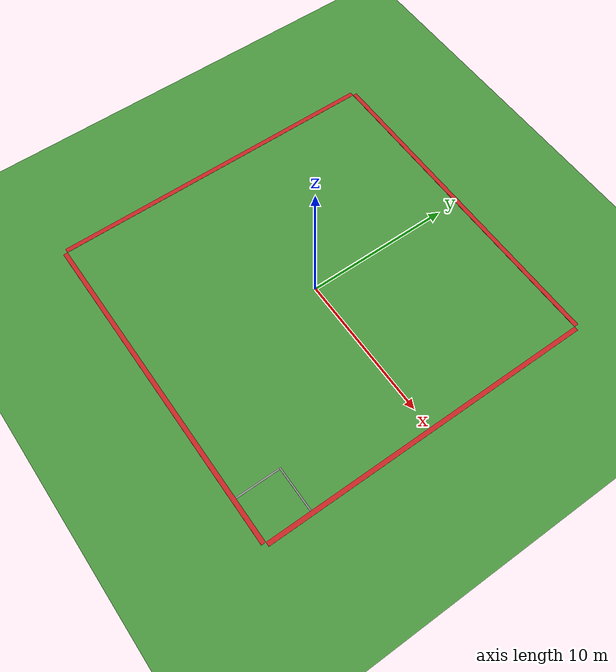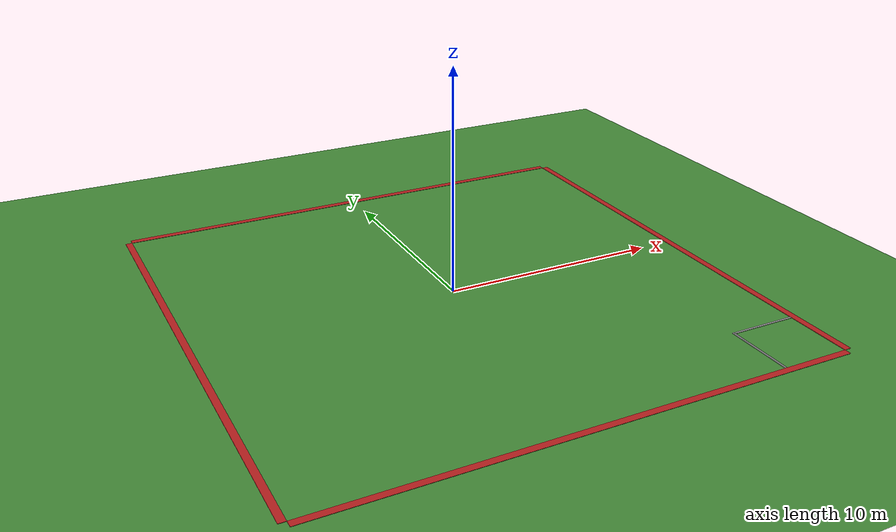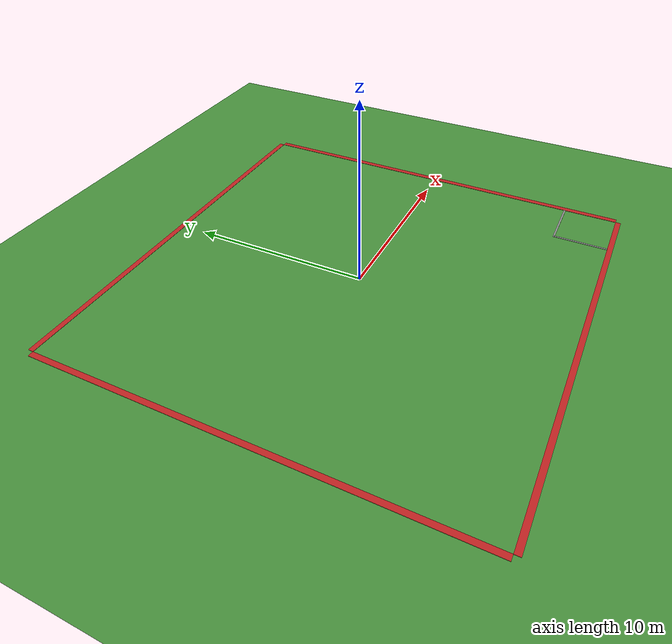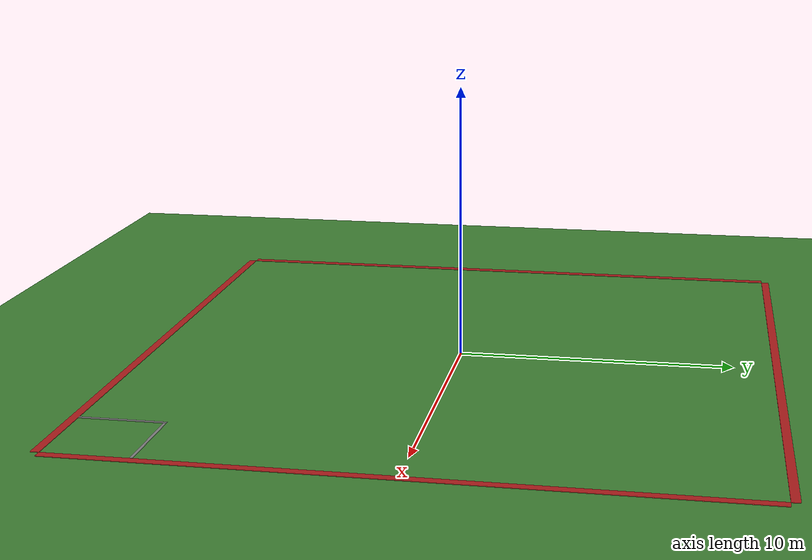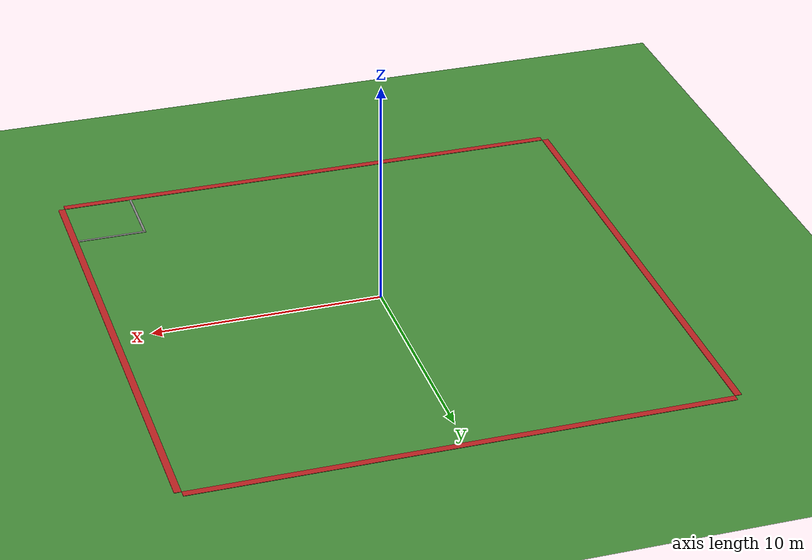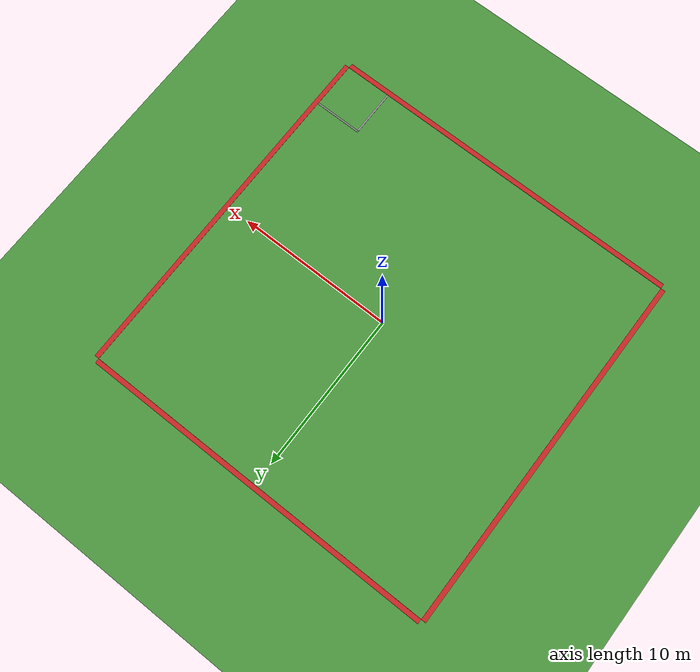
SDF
<sdf version="1.7">
 <world name="default">
  <scene><sky><clouds><speed>5</speed></clouds></sky></scene>
  <light name="sun" type="directional">
   <pose>0 0 10 0 -0 0</pose>
   <diffuse>0.8 0.8 0.8 1</diffuse>
   <specular>0.2 0.2 0.2 1</specular>
   <attenuation>
    <range>1000</range>
    <constant>0.9</constant>
    <linear>0.01</linear>
    <quadratic>0.001</quadratic>
   </attenuation>
   <direction>-0.5 0.1 -0.9</direction>
   <spot><inner_angle>0</inner_angle><outer_angle>0</outer_angle><falloff>0</falloff></spot>
  </light>
  <model name="ground_plane">
   <static>1</static>
   <link name="link">
    <collision name="collision">
     <geometry><plane><normal>0 0 1</normal><size>100 100</size></plane></geometry>
     <surface>
      <contact><collide_bitmask>65535</collide_bitmask></contact>
      <friction><ode><mu>100</mu><mu2>50</mu2></ode></friction>
     </surface>
    </collision>
   </link>
  </model>
  <gravity>0 0 -9.8</gravity>
  <magnetic_field>6e-06 2.3e-05 -4.2e-05</magnetic_field>
  <atmosphere type="adiabatic"/>
  <physics type="ode">
   <max_step_size>0.001</max_step_size>
   <real_time_factor>1</real_time_factor>
   <real_time_update_rate>1000</real_time_update_rate>
  </physics>
  <scene><ambient>0.4 0.4 0.4 1</ambient><background>0.7 0.7 0.7 1</background><shadows>1</shadows></scene>
  <spherical_coordinates>
   <surface_model>EARTH_WGS84</surface_model>
   <latitude_deg>0</latitude_deg>
   <longitude_deg>0</longitude_deg>
   <elevation>0</elevation>
   <heading_deg>0</heading_deg>
  </spherical_coordinates>
  <model name="dropoff_tape">
   <link name="link_0">
    <inertial>
     <mass>1</mass>
     <inertia>
      <ixx>0.166667</ixx>
      <ixy>0</ixy>
      <ixz>0</ixz>
      <iyy>0.166667</iyy>
      <iyz>0</iyz>
      <izz>0.166667</izz>
     </inertia>
    </inertial>
    <visual name="visual">
     <geometry><box><size>3.048 0.1 0.02</size></box></geometry>
     <material>
      <lighting>1</lighting>
      <script><uri>file://media/materials/scripts/gazebo.material</uri><name>Gazebo/Grey</name></script>
      <shader type="pixel"><normal_map>__default__</normal_map></shader>
      <ambient>0.3 0.3 0.3 1</ambient>
      <diffuse>0.7 0.7 0.7 1</diffuse>
      <specular>0.01 0.01 0.01 1</specular>
      <emissive>0 0 0 1</emissive>
     </material>
    </visual>
    <collision name="collision">
     <geometry><box><size>0 0 0</size></box></geometry>
     <surface>
      <friction>
       <ode><mu>1</mu><mu2>1</mu2><fdir1>0 0 0</fdir1><slip1>0</slip1><slip2>0</slip2></ode>
       <torsional>
        <coefficient>1</coefficient>
        <patch_radius>0</patch_radius>
        <surface_radius>0</surface_radius>
        <use_patch_radius>1</use_patch_radius>
        <ode><slip>0</slip></ode>
       </torsional>
      </friction>
      <bounce><restitution_coefficient>0</restitution_coefficient><threshold>1e+06</threshold></bounce>
      <contact>
       <collide_without_contact>0</collide_without_contact>
       <collide_without_contact_bitmask>1</collide_without_contact_bitmask>
       <collide_bitmask>1</collide_bitmask>
       <ode>
        <soft_cfm>0</soft_cfm>
        <soft_erp>0.2</soft_erp>
        <kp>1e+13</kp>
        <kd>1</kd>
        <max_vel>0.01</max_vel>
        <min_depth>0</min_depth>
       </ode>
       <bullet>
        <split_impulse>1</split_impulse>
        <split_impulse_penetration_threshold>-0.01</split_impulse_penetration_threshold>
        <soft_cfm>0</soft_cfm>
        <soft_erp>0.2</soft_erp>
        <kp>1e+13</kp>
        <kd>1</kd>
       </bullet>
      </contact>
     </surface>
    </collision>
   </link>
   <static>1</static>
   <allow_auto_disable>0</allow_auto_disable>
   <pose>9.89804 -8.43039 0 0 -0 0</pose>
  </model>
  <model name="dropoff_tape_0">
   <link name="link_0">
    <inertial>
     <mass>1</mass>
     <inertia>
      <ixx>0.166667</ixx>
      <ixy>0</ixy>
      <ixz>0</ixz>
      <iyy>0.166667</iyy>
      <iyz>0</iyz>
      <izz>0.166667</izz>
     </inertia>
    </inertial>
    <visual name="visual">
     <geometry><box><size>3.048 0.1 0.02</size></box></geometry>
     <material>
      <lighting>1</lighting>
      <script><uri>file://media/materials/scripts/gazebo.material</uri><name>Gazebo/Grey</name></script>
      <shader type="pixel"><normal_map>__default__</normal_map></shader>
      <ambient>0.3 0.3 0.3 1</ambient>
      <diffuse>0.7 0.7 0.7 1</diffuse>
      <specular>0.01 0.01 0.01 1</specular>
      <emissive>0 0 0 1</emissive>
     </material>
    </visual>
    <collision name="collision">
     <geometry><box><size>0 0 0</size></box></geometry>
     <surface>
      <friction>
       <ode><mu>1</mu><mu2>1</mu2><fdir1>0 0 0</fdir1><slip1>0</slip1><slip2>0</slip2></ode>
       <torsional>
        <coefficient>1</coefficient>
        <patch_radius>0</patch_radius>
        <surface_radius>0</surface_radius>
        <use_patch_radius>1</use_patch_radius>
        <ode><slip>0</slip></ode>
       </torsional>
      </friction>
      <bounce><restitution_coefficient>0</restitution_coefficient><threshold>1e+06</threshold></bounce>
      <contact>
       <collide_without_contact>0</collide_without_contact>
       <collide_without_contact_bitmask>1</collide_without_contact_bitmask>
       <collide_bitmask>1</collide_bitmask>
       <ode>
        <soft_cfm>0</soft_cfm>
        <soft_erp>0.2</soft_erp>
        <kp>1e+13</kp>
        <kd>1</kd>
        <max_vel>0.01</max_vel>
        <min_depth>0</min_depth>
       </ode>
       <bullet>
        <split_impulse>1</split_impulse>
        <split_impulse_penetration_threshold>-0.01</split_impulse_penetration_threshold>
        <soft_cfm>0</soft_cfm>
        <soft_erp>0.2</soft_erp>
        <kp>1e+13</kp>
        <kd>1</kd>
       </bullet>
      </contact>
     </surface>
    </collision>
   </link>
   <static>1</static>
   <allow_auto_disable>0</allow_auto_disable>
   <pose>8.42166 -9.90138 0 0 -0 1.5708</pose>
  </model>
  <model name="border">
   <link name="link_0">
    <inertial>
     <mass>1</mass>
     <inertia>
      <ixx>0.166667</ixx>
      <ixy>0</ixy>
      <ixz>0</ixz>
      <iyy>0.166667</iyy>
      <iyz>0</iyz>
      <izz>0.166667</izz>
     </inertia>
    </inertial>
    <visual name="visual">
     <geometry><box><size>22.86 0.3 0.02</size></box></geometry>
     <material>
      <lighting>1</lighting>
      <script><uri>file://media/materials/scripts/gazebo.material</uri><name>Gazebo/Red</name></script>
      <shader type="pixel"><normal_map>__default__</normal_map></shader>
      <ambient>1 0 0 1</ambient>
      <diffuse>1 0 0 1</diffuse>
      <specular>0.1 0.1 0.1 1</specular>
      <emissive>0 0 0 1</emissive>
     </material>
    </visual>
    <collision name="collision">
     <geometry><box><size>0 0 0</size></box></geometry>
     <surface>
      <friction>
       <ode><mu>1</mu><mu2>1</mu2><fdir1>0 0 0</fdir1><slip1>0</slip1><slip2>0</slip2></ode>
       <torsional>
        <coefficient>1</coefficient>
        <patch_radius>0</patch_radius>
        <surface_radius>0</surface_radius>
        <use_patch_radius>1</use_patch_radius>
        <ode><slip>0</slip></ode>
       </torsional>
      </friction>
      <bounce><restitution_coefficient>0</restitution_coefficient><threshold>1e+06</threshold></bounce>
      <contact>
       <collide_without_contact>0</collide_without_contact>
       <collide_without_contact_bitmask>1</collide_without_contact_bitmask>
       <collide_bitmask>1</collide_bitmask>
       <ode>
        <soft_cfm>0</soft_cfm>
        <soft_erp>0.2</soft_erp>
        <kp>1e+13</kp>
        <kd>1</kd>
        <max_vel>0.01</max_vel>
        <min_depth>0</min_depth>
       </ode>
       <bullet>
        <split_impulse>1</split_impulse>
        <split_impulse_penetration_threshold>-0.01</split_impulse_penetration_threshold>
        <soft_cfm>0</soft_cfm>
        <soft_erp>0.2</soft_erp>
        <kp>1e+13</kp>
        <kd>1</kd>
       </bullet>
      </contact>
     </surface>
    </collision>
   </link>
   <static>1</static>
   <allow_auto_disable>0</allow_auto_disable>
   <pose>0 11.58 0 0 -0 0</pose>
  </model>
  <model name="border_clone">
   <link name="link_0">
    <inertial>
     <mass>1</mass>
     <inertia>
      <ixx>0.166667</ixx>
      <ixy>0</ixy>
      <ixz>0</ixz>
      <iyy>0.166667</iyy>
      <iyz>0</iyz>
      <izz>0.166667</izz>
     </inertia>
    </inertial>
    <visual name="visual">
     <geometry><box><size>22.86 0.3 0.02</size></box></geometry>
     <material>
      <lighting>1</lighting>
      <script><uri>file://media/materials/scripts/gazebo.material</uri><name>Gazebo/Red</name></script>
      <shader type="pixel"><normal_map>__default__</normal_map></shader>
      <ambient>1 0 0 1</ambient>
      <diffuse>1 0 0 1</diffuse>
      <specular>0.1 0.1 0.1 1</specular>
      <emissive>0 0 0 1</emissive>
     </material>
    </visual>
    <collision name="collision">
     <geometry><box><size>0 0 0</size></box></geometry>
     <surface>
      <friction>
       <ode><mu>1</mu><mu2>1</mu2><fdir1>0 0 0</fdir1><slip1>0</slip1><slip2>0</slip2></ode>
       <torsional>
        <coefficient>1</coefficient>
        <patch_radius>0</patch_radius>
        <surface_radius>0</surface_radius>
        <use_patch_radius>1</use_patch_radius>
        <ode><slip>0</slip></ode>
       </torsional>
      </friction>
      <bounce><restitution_coefficient>0</restitution_coefficient><threshold>1e+06</threshold></bounce>
      <contact>
       <collide_without_contact>0</collide_without_contact>
       <collide_without_contact_bitmask>1</collide_without_contact_bitmask>
       <collide_bitmask>1</collide_bitmask>
       <ode>
        <soft_cfm>0</soft_cfm>
        <soft_erp>0.2</soft_erp>
        <kp>1e+13</kp>
        <kd>1</kd>
        <max_vel>0.01</max_vel>
        <min_depth>0</min_depth>
       </ode>
       <bullet>
        <split_impulse>1</split_impulse>
        <split_impulse_penetration_threshold>-0.01</split_impulse_penetration_threshold>
        <soft_cfm>0</soft_cfm>
        <soft_erp>0.2</soft_erp>
        <kp>1e+13</kp>
        <kd>1</kd>
       </bullet>
      </contact>
     </surface>
    </collision>
   </link>
   <static>1</static>
   <allow_auto_disable>0</allow_auto_disable>
   <pose>11.58 0 0 0 -0 1.5708</pose>
  </model>
  <model name="border_clone_0">
   <link name="link_0">
    <inertial>
     <mass>1</mass>
     <inertia>
      <ixx>0.166667</ixx>
      <ixy>0</ixy>
      <ixz>0</ixz>
      <iyy>0.166667</iyy>
      <iyz>0</iyz>
      <izz>0.166667</izz>
     </inertia>
    </inertial>
    <visual name="visual">
     <geometry><box><size>22.86 0.3 0.02</size></box></geometry>
     <material>
      <lighting>1</lighting>
      <script><uri>file://media/materials/scripts/gazebo.material</uri><name>Gazebo/Red</name></script>
      <shader type="pixel"><normal_map>__default__</normal_map></shader>
      <ambient>1 0 0 1</ambient>
      <diffuse>1 0 0 1</diffuse>
      <specular>0.1 0.1 0.1 1</specular>
      <emissive>0 0 0 1</emissive>
     </material>
    </visual>
    <collision name="collision">
     <geometry><box><size>0 0 0</size></box></geometry>
     <surface>
      <friction>
       <ode><mu>1</mu><mu2>1</mu2><fdir1>0 0 0</fdir1><slip1>0</slip1><slip2>0</slip2></ode>
       <torsional>
        <coefficient>1</coefficient>
        <patch_radius>0</patch_radius>
        <surface_radius>0</surface_radius>
        <use_patch_radius>1</use_patch_radius>
        <ode><slip>0</slip></ode>
       </torsional>
      </friction>
      <bounce><restitution_coefficient>0</restitution_coefficient><threshold>1e+06</threshold></bounce>
      <contact>
       <collide_without_contact>0</collide_without_contact>
       <collide_without_contact_bitmask>1</collide_without_contact_bitmask>
       <collide_bitmask>1</collide_bitmask>
       <ode>
        <soft_cfm>0</soft_cfm>
        <soft_erp>0.2</soft_erp>
        <kp>1e+13</kp>
        <kd>1</kd>
        <max_vel>0.01</max_vel>
        <min_depth>0</min_depth>
       </ode>
       <bullet>
        <split_impulse>1</split_impulse>
        <split_impulse_penetration_threshold>-0.01</split_impulse_penetration_threshold>
        <soft_cfm>0</soft_cfm>
        <soft_erp>0.2</soft_erp>
        <kp>1e+13</kp>
        <kd>1</kd>
       </bullet>
      </contact>
     </surface>
    </collision>
   </link>
   <static>1</static>
   <allow_auto_disable>0</allow_auto_disable>
   <pose>0 -11.58 0 0 -0 0</pose>
  </model>
  <model name="border_clone_1">
   <link name="link_0">
    <inertial>
     <mass>1</mass>
     <inertia>
      <ixx>0.166667</ixx>
      <ixy>0</ixy>
      <ixz>0</ixz>
      <iyy>0.166667</iyy>
      <iyz>0</iyz>
      <izz>0.166667</izz>
     </inertia>
    </inertial>
    <visual name="visual">
     <geometry><box><size>22.86 0.3 0.02</size></box></geometry>
     <material>
      <lighting>1</lighting>
      <script><uri>file://media/materials/scripts/gazebo.material</uri><name>Gazebo/Red</name></script>
      <shader type="pixel"><normal_map>__default__</normal_map></shader>
      <ambient>1 0 0 1</ambient>
      <diffuse>1 0 0 1</diffuse>
      <specular>0.1 0.1 0.1 1</specular>
      <emissive>0 0 0 1</emissive>
     </material>
    </visual>
    <collision name="collision">
     <geometry><box><size>0 0 0</size></box></geometry>
     <surface>
      <friction>
       <ode><mu>1</mu><mu2>1</mu2><fdir1>0 0 0</fdir1><slip1>0</slip1><slip2>0</slip2></ode>
       <torsional>
        <coefficient>1</coefficient>
        <patch_radius>0</patch_radius>
        <surface_radius>0</surface_radius>
        <use_patch_radius>1</use_patch_radius>
        <ode><slip>0</slip></ode>
       </torsional>
      </friction>
      <bounce><restitution_coefficient>0</restitution_coefficient><threshold>1e+06</threshold></bounce>
      <contact>
       <collide_without_contact>0</collide_without_contact>
       <collide_without_contact_bitmask>1</collide_without_contact_bitmask>
       <collide_bitmask>1</collide_bitmask>
       <ode>
        <soft_cfm>0</soft_cfm>
        <soft_erp>0.2</soft_erp>
        <kp>1e+13</kp>
        <kd>1</kd>
        <max_vel>0.01</max_vel>
        <min_depth>0</min_depth>
       </ode>
       <bullet>
        <split_impulse>1</split_impulse>
        <split_impulse_penetration_threshold>-0.01</split_impulse_penetration_threshold>
        <soft_cfm>0</soft_cfm>
        <soft_erp>0.2</soft_erp>
        <kp>1e+13</kp>
        <kd>1</kd>
       </bullet>
      </contact>
     </surface>
    </collision>
   </link>
   <static>1</static>
   <allow_auto_disable>0</allow_auto_disable>
   <pose>-11.58 0 0 0 -0 1.5708</pose>
  </model>
  <model name="grass_plane_0">
   <static>1</static>
   <link name="link">
    <collision name="collision">
     <geometry><plane><normal>0 0 1</normal><size>0 0</size></plane></geometry>
     <surface><friction><ode><mu>0.5</mu><mu2>0.5</mu2></ode></friction></surface>
    </collision>
    <visual name="visual_0">
     <cast_shadows>0</cast_shadows>
     <geometry><plane><normal>0 0 1</normal><size>80 80</size></plane></geometry>
     <material>
      <script>
       <uri>model://grass_plane/materials/scripts</uri>
       <uri>model://grass_plane/materials/textures</uri>
       <name>vrc/grass</name>
      </script>
     </material>
    </visual>
   </link>
  </model>
 </world>
</sdf>
